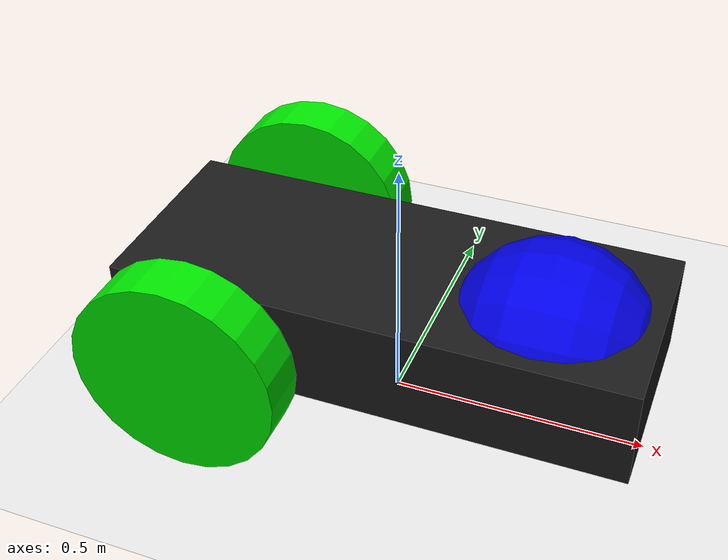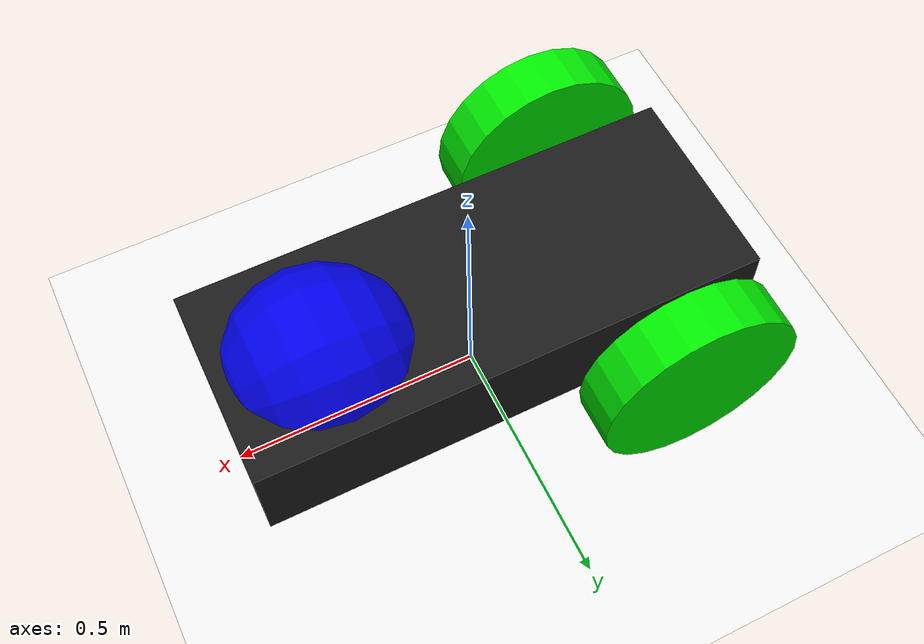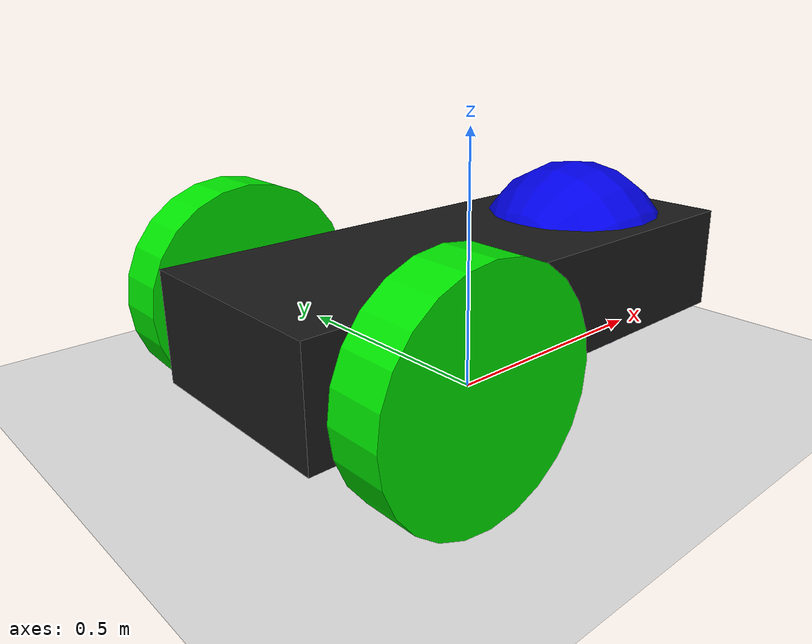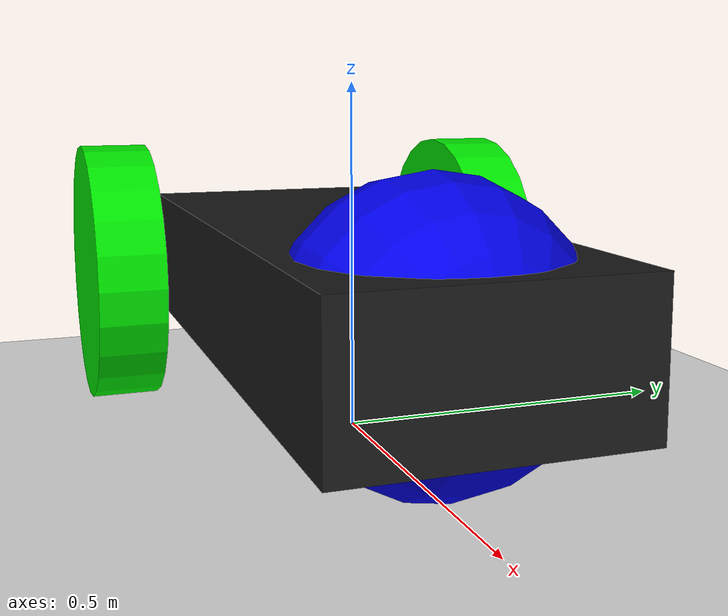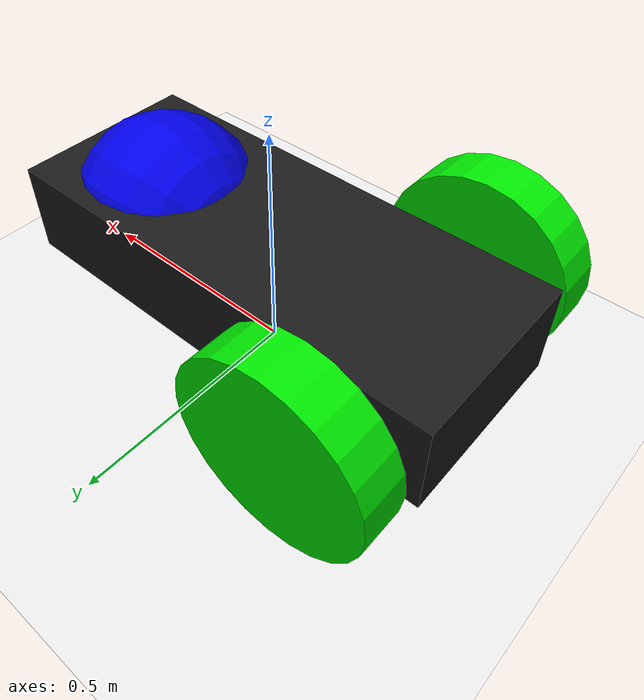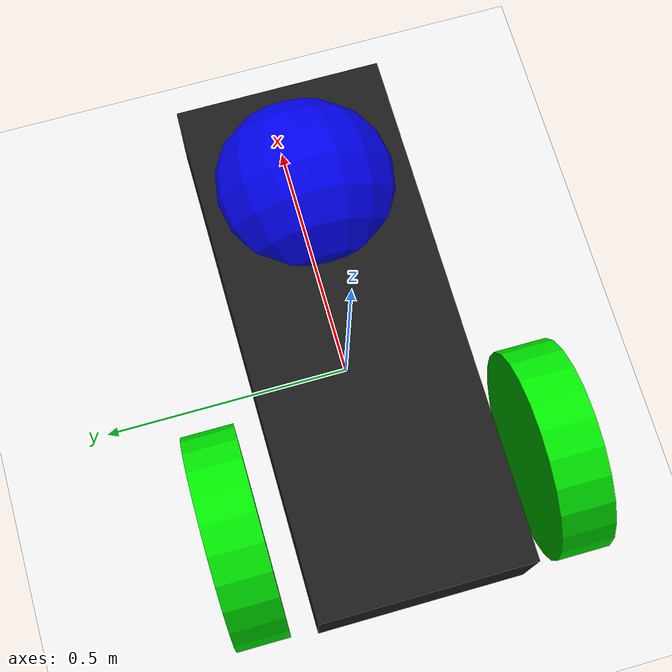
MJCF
<mujoco>
    <option gravity="0 0 -9.81" />
    <worldbody>
        <light diffuse=".5 .5 .5" pos="0 0 10" dir="0 0 -1" />
        <geom type="plane" size="20 20 0.1" rgba=".9 .9 .9 1" />
        <body name="chassis" pos="0 0 .2" euler="0 90 0">
            <joint type="free" />
            <geom type="box" size=".1 .2 .5" rgba=".1 .1 .1 1" />
            <site name="marker" pos="0 0 -.3" size=".1" euler="0 -90 0" />
            <body pos="0 .3 -.3" euler="90 0 0">
                <joint name="left_wheel_joint" type="hinge" axis="0 0 -1" />
                <geom type="cylinder" size=".2 .05" rgba="0 .9 0 1" />
            </body>
            <body pos="0 -.3 -.3" euler="90 0 0">
                <joint name="right_wheel_joint" type="hinge" axis="0 0 -1" />
                <geom type="cylinder" size=".2 .05" rgba="0 .9 0 1" />
            </body>
            <body pos="0 0 .3">
                <joint name="caster_wheel_joint" type="ball" axis="0 0 -1" />
                <geom type="sphere" size=".2" rgba="0 0 .9 1" friction="0"/>
            </body>
        </body>
    </worldbody>
    <sensor>
        <framepos objtype="site" objname="marker" />
    </sensor>
    <actuator>
        <velocity name="left_wheel_servo" joint="left_wheel_joint" kv="100" />
        <velocity name="right_wheel_servo" joint="right_wheel_joint" kv="100" />
    </actuator>
</mujoco>
